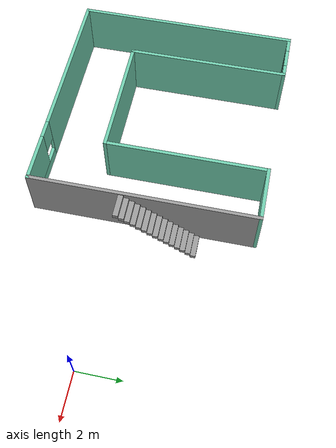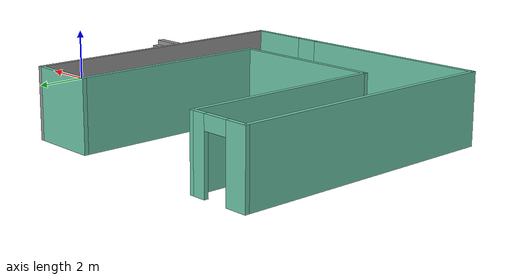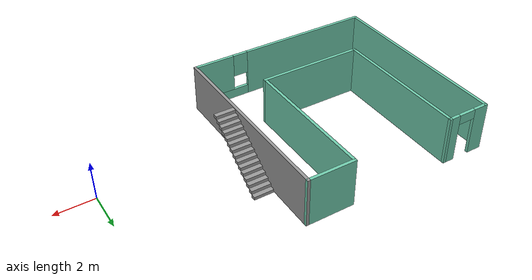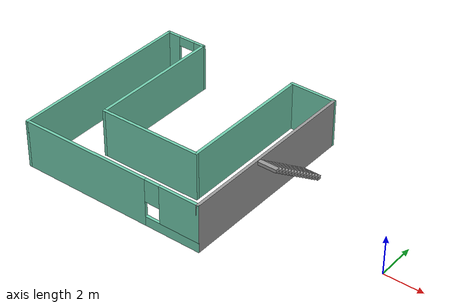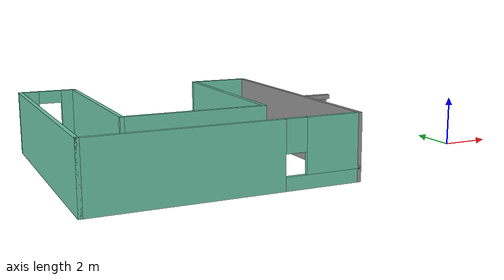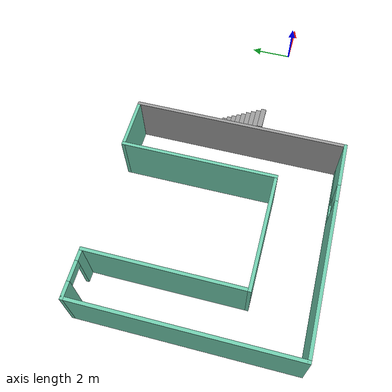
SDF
<?xml version='1.0'?>
<sdf version='1.7'>
  <model name='mybuilding'>
    <pose>-8.41018 1.27931 0 0 -0 0</pose>
    <link name='Stairs_1'>
      <visual name='Stairs_1_Visual_0'>
        <pose>2.11106 2.37984 0.083333 0 -0 0</pose>
        <geometry>
          <box>
            <size>1 0.233333 0.166667</size>
          </box>
        </geometry>
        <material>
          <script>
            <uri>file://media/materials/scripts/gazebo.material</uri>
            <name>Gazebo/Grey</name>
          </script>
          <ambient>1 1 1 1</ambient>
        </material>
        <meta>
          <layer>0</layer>
        </meta>
      </visual>
      <collision name='Stairs_1_Collision_0'>
        <geometry>
          <box>
            <size>1 0.233333 0.166667</size>
          </box>
        </geometry>
        <pose>2.11106 2.37984 0.083333 0 -0 0</pose>
      </collision>
      <visual name='Stairs_1_Visual_1'>
        <pose>2.11106 2.1465 0.25 0 -0 0</pose>
        <geometry>
          <box>
            <size>1 0.233333 0.166667</size>
          </box>
        </geometry>
        <material>
          <script>
            <uri>file://media/materials/scripts/gazebo.material</uri>
            <name>Gazebo/Grey</name>
          </script>
          <ambient>1 1 1 1</ambient>
        </material>
        <meta>
          <layer>0</layer>
        </meta>
      </visual>
      <collision name='Stairs_1_Collision_1'>
        <geometry>
          <box>
            <size>1 0.233333 0.166667</size>
          </box>
        </geometry>
        <pose>2.11106 2.1465 0.25 0 -0 0</pose>
      </collision>
      <visual name='Stairs_1_Visual_2'>
        <pose>2.11106 1.91317 0.416667 0 -0 0</pose>
        <geometry>
          <box>
            <size>1 0.233333 0.166667</size>
          </box>
        </geometry>
        <material>
          <script>
            <uri>file://media/materials/scripts/gazebo.material</uri>
            <name>Gazebo/Grey</name>
          </script>
          <ambient>1 1 1 1</ambient>
        </material>
        <meta>
          <layer>0</layer>
        </meta>
      </visual>
      <collision name='Stairs_1_Collision_2'>
        <geometry>
          <box>
            <size>1 0.233333 0.166667</size>
          </box>
        </geometry>
        <pose>2.11106 1.91317 0.416667 0 -0 0</pose>
      </collision>
      <visual name='Stairs_1_Visual_3'>
        <pose>2.11106 1.67984 0.583333 0 -0 0</pose>
        <geometry>
          <box>
            <size>1 0.233333 0.166667</size>
          </box>
        </geometry>
        <material>
          <script>
            <uri>file://media/materials/scripts/gazebo.material</uri>
            <name>Gazebo/Grey</name>
          </script>
          <ambient>1 1 1 1</ambient>
        </material>
        <meta>
          <layer>0</layer>
        </meta>
      </visual>
      <collision name='Stairs_1_Collision_3'>
        <geometry>
          <box>
            <size>1 0.233333 0.166667</size>
          </box>
        </geometry>
        <pose>2.11106 1.67984 0.583333 0 -0 0</pose>
      </collision>
      <visual name='Stairs_1_Visual_4'>
        <pose>2.11106 1.4465 0.75 0 -0 0</pose>
        <geometry>
          <box>
            <size>1 0.233333 0.166667</size>
          </box>
        </geometry>
        <material>
          <script>
            <uri>file://media/materials/scripts/gazebo.material</uri>
            <name>Gazebo/Grey</name>
          </script>
          <ambient>1 1 1 1</ambient>
        </material>
        <meta>
          <layer>0</layer>
        </meta>
      </visual>
      <collision name='Stairs_1_Collision_4'>
        <geometry>
          <box>
            <size>1 0.233333 0.166667</size>
          </box>
        </geometry>
        <pose>2.11106 1.4465 0.75 0 -0 0</pose>
      </collision>
      <visual name='Stairs_1_Visual_5'>
        <pose>2.11106 1.21317 0.916667 0 -0 0</pose>
        <geometry>
          <box>
            <size>1 0.233333 0.166667</size>
          </box>
        </geometry>
        <material>
          <script>
            <uri>file://media/materials/scripts/gazebo.material</uri>
            <name>Gazebo/Grey</name>
          </script>
          <ambient>1 1 1 1</ambient>
        </material>
        <meta>
          <layer>0</layer>
        </meta>
      </visual>
      <collision name='Stairs_1_Collision_5'>
        <geometry>
          <box>
            <size>1 0.233333 0.166667</size>
          </box>
        </geometry>
        <pose>2.11106 1.21317 0.916667 0 -0 0</pose>
      </collision>
      <visual name='Stairs_1_Visual_6'>
        <pose>2.11106 0.979837 1.08333 0 -0 0</pose>
        <geometry>
          <box>
            <size>1 0.233333 0.166667</size>
          </box>
        </geometry>
        <material>
          <script>
            <uri>file://media/materials/scripts/gazebo.material</uri>
            <name>Gazebo/Grey</name>
          </script>
          <ambient>1 1 1 1</ambient>
        </material>
        <meta>
          <layer>0</layer>
        </meta>
      </visual>
      <collision name='Stairs_1_Collision_6'>
        <geometry>
          <box>
            <size>1 0.233333 0.166667</size>
          </box>
        </geometry>
        <pose>2.11106 0.979837 1.08333 0 -0 0</pose>
      </collision>
      <visual name='Stairs_1_Visual_7'>
        <pose>2.11106 0.746504 1.25 0 -0 0</pose>
        <geometry>
          <box>
            <size>1 0.233333 0.166667</size>
          </box>
        </geometry>
        <material>
          <script>
            <uri>file://media/materials/scripts/gazebo.material</uri>
            <name>Gazebo/Grey</name>
          </script>
          <ambient>1 1 1 1</ambient>
        </material>
        <meta>
          <layer>0</layer>
        </meta>
      </visual>
      <collision name='Stairs_1_Collision_7'>
        <geometry>
          <box>
            <size>1 0.233333 0.166667</size>
          </box>
        </geometry>
        <pose>2.11106 0.746504 1.25 0 -0 0</pose>
      </collision>
      <visual name='Stairs_1_Visual_8'>
        <pose>2.11106 0.51317 1.41667 0 -0 0</pose>
        <geometry>
          <box>
            <size>1 0.233333 0.166667</size>
          </box>
        </geometry>
        <material>
          <script>
            <uri>file://media/materials/scripts/gazebo.material</uri>
            <name>Gazebo/Grey</name>
          </script>
          <ambient>1 1 1 1</ambient>
        </material>
        <meta>
          <layer>0</layer>
        </meta>
      </visual>
      <collision name='Stairs_1_Collision_8'>
        <geometry>
          <box>
            <size>1 0.233333 0.166667</size>
          </box>
        </geometry>
        <pose>2.11106 0.51317 1.41667 0 -0 0</pose>
      </collision>
      <visual name='Stairs_1_Visual_9'>
        <pose>2.11106 0.279837 1.58333 0 -0 0</pose>
        <geometry>
          <box>
            <size>1 0.233333 0.166667</size>
          </box>
        </geometry>
        <material>
          <script>
            <uri>file://media/materials/scripts/gazebo.material</uri>
            <name>Gazebo/Grey</name>
          </script>
          <ambient>1 1 1 1</ambient>
        </material>
        <meta>
          <layer>0</layer>
        </meta>
      </visual>
      <collision name='Stairs_1_Collision_9'>
        <geometry>
          <box>
            <size>1 0.233333 0.166667</size>
          </box>
        </geometry>
        <pose>2.11106 0.279837 1.58333 0 -0 0</pose>
      </collision>
      <visual name='Stairs_1_Visual_10'>
        <pose>2.11106 0.046504 1.75 0 -0 0</pose>
        <geometry>
          <box>
            <size>1 0.233333 0.166667</size>
          </box>
        </geometry>
        <material>
          <script>
            <uri>file://media/materials/scripts/gazebo.material</uri>
            <name>Gazebo/Grey</name>
          </script>
          <ambient>1 1 1 1</ambient>
        </material>
        <meta>
          <layer>0</layer>
        </meta>
      </visual>
      <collision name='Stairs_1_Collision_10'>
        <geometry>
          <box>
            <size>1 0.233333 0.166667</size>
          </box>
        </geometry>
        <pose>2.11106 0.046504 1.75 0 -0 0</pose>
      </collision>
      <visual name='Stairs_1_Visual_11'>
        <pose>2.11106 -0.18683 1.91667 0 -0 0</pose>
        <geometry>
          <box>
            <size>1 0.233333 0.166667</size>
          </box>
        </geometry>
        <material>
          <script>
            <uri>file://media/materials/scripts/gazebo.material</uri>
            <name>Gazebo/Grey</name>
          </script>
          <ambient>1 1 1 1</ambient>
        </material>
        <meta>
          <layer>0</layer>
        </meta>
      </visual>
      <collision name='Stairs_1_Collision_11'>
        <geometry>
          <box>
            <size>1 0.233333 0.166667</size>
          </box>
        </geometry>
        <pose>2.11106 -0.18683 1.91667 0 -0 0</pose>
      </collision>
      <visual name='Stairs_1_Visual_12'>
        <pose>2.11106 -0.420163 2.08333 0 -0 0</pose>
        <geometry>
          <box>
            <size>1 0.233333 0.166667</size>
          </box>
        </geometry>
        <material>
          <script>
            <uri>file://media/materials/scripts/gazebo.material</uri>
            <name>Gazebo/Grey</name>
          </script>
          <ambient>1 1 1 1</ambient>
        </material>
        <meta>
          <layer>0</layer>
        </meta>
      </visual>
      <collision name='Stairs_1_Collision_12'>
        <geometry>
          <box>
            <size>1 0.233333 0.166667</size>
          </box>
        </geometry>
        <pose>2.11106 -0.420163 2.08333 0 -0 0</pose>
      </collision>
      <visual name='Stairs_1_Visual_13'>
        <pose>2.11106 -0.653496 2.25 0 -0 0</pose>
        <geometry>
          <box>
            <size>1 0.233333 0.166667</size>
          </box>
        </geometry>
        <material>
          <script>
            <uri>file://media/materials/scripts/gazebo.material</uri>
            <name>Gazebo/Grey</name>
          </script>
          <ambient>1 1 1 1</ambient>
        </material>
        <meta>
          <layer>0</layer>
        </meta>
      </visual>
      <collision name='Stairs_1_Collision_13'>
        <geometry>
          <box>
            <size>1 0.233333 0.166667</size>
          </box>
        </geometry>
        <pose>2.11106 -0.653496 2.25 0 -0 0</pose>
      </collision>
      <visual name='Stairs_1_Visual_14'>
        <pose>2.11106 -0.886829 2.41667 0 -0 0</pose>
        <geometry>
          <box>
            <size>1 0.233333 0.166667</size>
          </box>
        </geometry>
        <material>
          <script>
            <uri>file://media/materials/scripts/gazebo.material</uri>
            <name>Gazebo/Grey</name>
          </script>
          <ambient>1 1 1 1</ambient>
        </material>
        <meta>
          <layer>0</layer>
        </meta>
      </visual>
      <collision name='Stairs_1_Collision_14'>
        <geometry>
          <box>
            <size>1 0.233333 0.166667</size>
          </box>
        </geometry>
        <pose>2.11106 -0.886829 2.41667 0 -0 0</pose>
      </collision>
    </link>
    <link name='Wall_17'>
      <collision name='Wall_17_Collision'>
        <geometry>
          <box>
            <size>10 0.15 2.5</size>
          </box>
        </geometry>
        <pose>0 0 1.25 0 -0 0</pose>
      </collision>
      <visual name='Wall_17_Visual'>
        <pose>0 0 1.25 0 -0 0</pose>
        <geometry>
          <box>
            <size>10 0.15 2.5</size>
          </box>
        </geometry>
        <material>
          <script>
            <uri>file://media/materials/scripts/gazebo.material</uri>
            <name>Gazebo/Grey</name>
          </script>
          <ambient>0.435294 0.796078 0.67451 1</ambient>
        </material>
        <meta>
          <layer>0</layer>
        </meta>
      </visual>
      <pose>-8.33518 0 0 0 -0 -1.5708</pose>
    </link>
    <link name='Wall_18'>
      <pose>-3.41018 -4.925 0 0 -0 0</pose>
      <visual name='Wall_18_Visual_0'>
        <pose>-1.48697 0 1.25 0 -0 0</pose>
        <geometry>
          <box>
            <size>7.02606 0.15 2.5</size>
          </box>
        </geometry>
        <material>
          <script>
            <uri>file://media/materials/scripts/gazebo.material</uri>
            <name>Gazebo/Grey</name>
          </script>
          <ambient>0.435294 0.796078 0.67451 1</ambient>
        </material>
        <meta>
          <layer>0</layer>
        </meta>
      </visual>
      <collision name='Wall_18_Collision_0'>
        <geometry>
          <box>
            <size>7.02606 0.15 2.5</size>
          </box>
        </geometry>
        <pose>-1.48697 0 1.25 0 -0 0</pose>
      </collision>
      <visual name='Wall_18_Visual_1'>
        <pose>3.51303 0 0.25 0 -0 0</pose>
        <geometry>
          <box>
            <size>2.97394 0.15 0.5</size>
          </box>
        </geometry>
        <material>
          <script>
            <uri>file://media/materials/scripts/gazebo.material</uri>
            <name>Gazebo/Grey</name>
          </script>
          <ambient>0.435294 0.796078 0.67451 1</ambient>
        </material>
        <meta>
          <layer>0</layer>
        </meta>
      </visual>
      <collision name='Wall_18_Collision_1'>
        <geometry>
          <box>
            <size>2.97394 0.15 0.5</size>
          </box>
        </geometry>
        <pose>3.51303 0 0.25 0 -0 0</pose>
      </collision>
      <visual name='Wall_18_Visual_2'>
        <pose>3.91303 0 1.5 0 -0 0</pose>
        <geometry>
          <box>
            <size>2.17394 0.15 2</size>
          </box>
        </geometry>
        <material>
          <script>
            <uri>file://media/materials/scripts/gazebo.material</uri>
            <name>Gazebo/Grey</name>
          </script>
          <ambient>0.435294 0.796078 0.67451 1</ambient>
        </material>
        <meta>
          <layer>0</layer>
        </meta>
      </visual>
      <collision name='Wall_18_Collision_2'>
        <geometry>
          <box>
            <size>2.17394 0.15 2</size>
          </box>
        </geometry>
        <pose>3.91303 0 1.5 0 -0 0</pose>
      </collision>
      <visual name='Wall_18_Visual_3'>
        <pose>2.42606 0 1.9 0 -0 0</pose>
        <geometry>
          <box>
            <size>0.8 0.15 1.2</size>
          </box>
        </geometry>
        <material>
          <script>
            <uri>file://media/materials/scripts/gazebo.material</uri>
            <name>Gazebo/Grey</name>
          </script>
          <ambient>0.435294 0.796078 0.67451 1</ambient>
        </material>
        <meta>
          <layer>0</layer>
        </meta>
      </visual>
      <collision name='Wall_18_Collision_3'>
        <geometry>
          <box>
            <size>0.8 0.15 1.2</size>
          </box>
        </geometry>
        <pose>2.42606 0 1.9 0 -0 0</pose>
      </collision>
    </link>
    <link name='Wall_19'>
      <collision name='Wall_19_Collision'>
        <geometry>
          <box>
            <size>10 0.15 2.5</size>
          </box>
        </geometry>
        <pose>0 0 1.25 0 -0 0</pose>
      </collision>
      <visual name='Wall_19_Visual'>
        <pose>0 0 1.25 0 -0 0</pose>
        <geometry>
          <box>
            <size>10 0.15 2.5</size>
          </box>
        </geometry>
        <material>
          <script>
            <uri>file://media/materials/scripts/gazebo.material</uri>
            <name>Gazebo/Grey</name>
          </script>
          <ambient>1 1 1 1</ambient>
        </material>
        <meta>
          <layer>0</layer>
        </meta>
      </visual>
      <pose>1.51482 0 0 0 -0 1.5708</pose>
    </link>
    <link name='Wall_20'>
      <collision name='Wall_20_Collision'>
        <geometry>
          <box>
            <size>2.5 0.15 2.5</size>
          </box>
        </geometry>
        <pose>0 0 1.25 0 -0 0</pose>
      </collision>
      <visual name='Wall_20_Visual'>
        <pose>0 0 1.25 0 -0 0</pose>
        <geometry>
          <box>
            <size>2.5 0.15 2.5</size>
          </box>
        </geometry>
        <material>
          <script>
            <uri>file://media/materials/scripts/gazebo.material</uri>
            <name>Gazebo/Grey</name>
          </script>
          <ambient>0.435294 0.796078 0.67451 1</ambient>
        </material>
        <meta>
          <layer>0</layer>
        </meta>
      </visual>
      <pose>0.339821 4.925 0 0 -0 3.14159</pose>
    </link>
    <link name='Wall_21'>
      <collision name='Wall_21_Collision'>
        <geometry>
          <box>
            <size>7.25 0.15 2.5</size>
          </box>
        </geometry>
        <pose>0 0 1.25 0 -0 0</pose>
      </collision>
      <visual name='Wall_21_Visual'>
        <pose>0 0 1.25 0 -0 0</pose>
        <geometry>
          <box>
            <size>7.25 0.15 2.5</size>
          </box>
        </geometry>
        <material>
          <script>
            <uri>file://media/materials/scripts/gazebo.material</uri>
            <name>Gazebo/Grey</name>
          </script>
          <ambient>0.435294 0.796078 0.67451 1</ambient>
        </material>
        <meta>
          <layer>0</layer>
        </meta>
      </visual>
      <pose>-0.835179 1.375 0 0 -0 -1.5708</pose>
    </link>
    <link name='Wall_22'>
      <collision name='Wall_22_Collision'>
        <geometry>
          <box>
            <size>5.5 0.15 2.5</size>
          </box>
        </geometry>
        <pose>0 0 1.25 0 -0 0</pose>
      </collision>
      <visual name='Wall_22_Visual'>
        <pose>0 0 1.25 0 -0 0</pose>
        <geometry>
          <box>
            <size>5.5 0.15 2.5</size>
          </box>
        </geometry>
        <material>
          <script>
            <uri>file://media/materials/scripts/gazebo.material</uri>
            <name>Gazebo/Grey</name>
          </script>
          <ambient>0.435294 0.796078 0.67451 1</ambient>
        </material>
        <meta>
          <layer>0</layer>
        </meta>
      </visual>
      <pose>-3.51018 -2.175 0 0 -0 3.14159</pose>
    </link>
    <link name='Wall_23'>
      <collision name='Wall_23_Collision'>
        <geometry>
          <box>
            <size>7.25 0.15 2.5</size>
          </box>
        </geometry>
        <pose>0 0 1.25 0 -0 0</pose>
      </collision>
      <visual name='Wall_23_Visual'>
        <pose>0 0 1.25 0 -0 0</pose>
        <geometry>
          <box>
            <size>7.25 0.15 2.5</size>
          </box>
        </geometry>
        <material>
          <script>
            <uri>file://media/materials/scripts/gazebo.material</uri>
            <name>Gazebo/Grey</name>
          </script>
          <ambient>0.435294 0.796078 0.67451 1</ambient>
        </material>
        <meta>
          <layer>0</layer>
        </meta>
      </visual>
      <pose>-6.18518 1.375 0 0 -0 1.5708</pose>
    </link>
    <link name='Wall_24'>
      <pose>-7.26018 4.925 0 0 -0 3.14159</pose>
      <visual name='Wall_24_Visual_0'>
        <pose>-0.842847 0 1.25 0 -0 0</pose>
        <geometry>
          <box>
            <size>0.614307 0.15 2.5</size>
          </box>
        </geometry>
        <material>
          <script>
            <uri>file://media/materials/scripts/gazebo.material</uri>
            <name>Gazebo/Grey</name>
          </script>
          <ambient>0.435294 0.796078 0.67451 1</ambient>
        </material>
        <meta>
          <layer>0</layer>
        </meta>
      </visual>
      <collision name='Wall_24_Collision_0'>
        <geometry>
          <box>
            <size>0.614307 0.15 2.5</size>
          </box>
        </geometry>
        <pose>-0.842847 0 1.25 0 -0 0</pose>
      </collision>
      <visual name='Wall_24_Visual_1'>
        <pose>0.757153 0 1.25 0 -0 0</pose>
        <geometry>
          <box>
            <size>0.785693 0.15 2.5</size>
          </box>
        </geometry>
        <material>
          <script>
            <uri>file://media/materials/scripts/gazebo.material</uri>
            <name>Gazebo/Grey</name>
          </script>
          <ambient>0.435294 0.796078 0.67451 1</ambient>
        </material>
        <meta>
          <layer>0</layer>
        </meta>
      </visual>
      <collision name='Wall_24_Collision_1'>
        <geometry>
          <box>
            <size>0.785693 0.15 2.5</size>
          </box>
        </geometry>
        <pose>0.757153 0 1.25 0 -0 0</pose>
      </collision>
      <visual name='Wall_24_Visual_2'>
        <pose>-0.085693 0 2.25 0 -0 0</pose>
        <geometry>
          <box>
            <size>0.9 0.15 0.5</size>
          </box>
        </geometry>
        <material>
          <script>
            <uri>file://media/materials/scripts/gazebo.material</uri>
            <name>Gazebo/Grey</name>
          </script>
          <ambient>0.435294 0.796078 0.67451 1</ambient>
        </material>
        <meta>
          <layer>0</layer>
        </meta>
      </visual>
      <collision name='Wall_24_Collision_2'>
        <geometry>
          <box>
            <size>0.9 0.15 0.5</size>
          </box>
        </geometry>
        <pose>-0.085693 0 2.25 0 -0 0</pose>
      </collision>
    </link>
    <static>1</static>
  </model>
</sdf>
